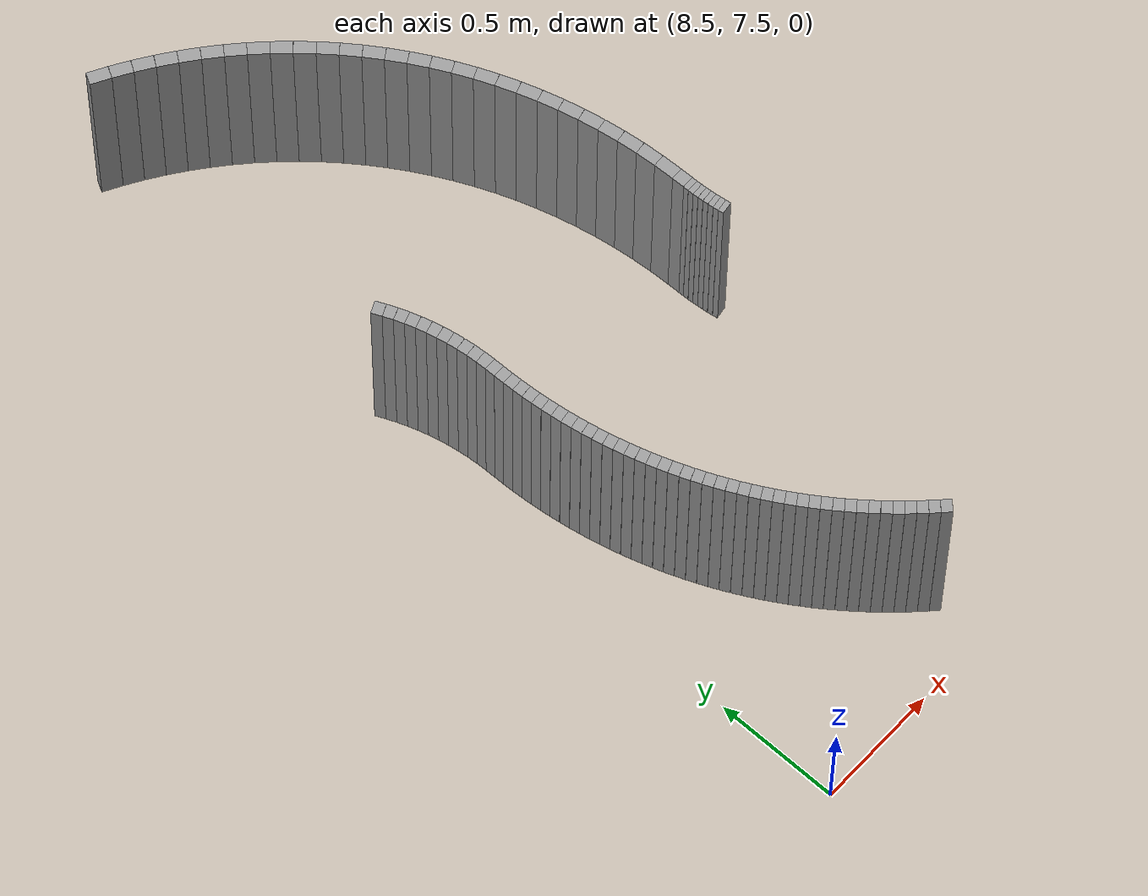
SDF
<sdf version="1.6">
 <model name="path_walls">
  <static>true</static>
  <model name="wall_left_175">
   <static>true</static>
   <pose>9.302464301004509 7.714959618961435 0.40 0 0 2.386019736903698</pose>
   <link name="wall_link">
    <visual name="wall_visual">
     <geometry><box><size>0.041257578265932716 0.05 0.8</size></box></geometry>
     <material><ambient>0.3 0.3 0.3 1</ambient><diffuse>0.6 0.6 0.6 1</diffuse></material>
    </visual>
    <collision name="wall_collision">
     <geometry><box><size>0.041257578265932716 0.05 0.8</size></box></geometry>
    </collision>
   </link>
  </model>
  <model name="wall_left_176">
   <static>true</static>
   <pose>9.27271799120377 7.743545919556013 0.40 0 0 2.366136239096101</pose>
   <link name="wall_link">
    <visual name="wall_visual">
     <geometry><box><size>0.041257578265904434 0.05 0.8</size></box></geometry>
     <material><ambient>0.3 0.3 0.3 1</ambient><diffuse>0.6 0.6 0.6 1</diffuse></material>
    </visual>
    <collision name="wall_collision">
     <geometry><box><size>0.041257578265904434 0.05 0.8</size></box></geometry>
    </collision>
   </link>
  </model>
  <model name="wall_left_177">
   <static>true</static>
   <pose>9.243545919556013 7.772717991203772 0.40 0 0 2.3462527412885428</pose>
   <link name="wall_link">
    <visual name="wall_visual">
     <geometry><box><size>0.04125757826590383 0.05 0.8</size></box></geometry>
     <material><ambient>0.3 0.3 0.3 1</ambient><diffuse>0.6 0.6 0.6 1</diffuse></material>
    </visual>
    <collision name="wall_collision">
     <geometry><box><size>0.04125757826590383 0.05 0.8</size></box></geometry>
    </collision>
   </link>
  </model>
  <model name="wall_left_178">
   <static>true</static>
   <pose>9.214959618961437 7.802464301004507 0.40 0 0 2.3263692434810497</pose>
   <link name="wall_link">
    <visual name="wall_visual">
     <geometry><box><size>0.04125757826592888 0.05 0.8</size></box></geometry>
     <material><ambient>0.3 0.3 0.3 1</ambient><diffuse>0.6 0.6 0.6 1</diffuse></material>
    </visual>
    <collision name="wall_collision">
     <geometry><box><size>0.04125757826592888 0.05 0.8</size></box></geometry>
    </collision>
   </link>
  </model>
  <model name="wall_left_179">
   <static>true</static>
   <pose>9.186970390741283 7.832773089038407 0.40 0 0 2.306485745673514</pose>
   <link name="wall_link">
    <visual name="wall_visual">
     <geometry><box><size>0.04125757826587797 0.05 0.8</size></box></geometry>
     <material><ambient>0.3 0.3 0.3 1</ambient><diffuse>0.6 0.6 0.6 1</diffuse></material>
    </visual>
    <collision name="wall_collision">
     <geometry><box><size>0.04125757826587797 0.05 0.8</size></box></geometry>
    </collision>
   </link>
  </model>
  <model name="wall_left_180">
   <static>true</static>
   <pose>9.159589300169902 7.8636323730152755 0.40 0 0 2.2866022478659986</pose>
   <link name="wall_link">
    <visual name="wall_visual">
     <geometry><box><size>0.04125757826591408 0.05 0.8</size></box></geometry>
     <material><ambient>0.3 0.3 0.3 1</ambient><diffuse>0.6 0.6 0.6 1</diffuse></material>
    </visual>
    <collision name="wall_collision">
     <geometry><box><size>0.04125757826591408 0.05 0.8</size></box></geometry>
    </collision>
   </link>
  </model>
  <model name="wall_left_181">
   <static>true</static>
   <pose>9.132827172100225 7.895029953011601 0.40 0 0 2.26671875005847</pose>
   <link name="wall_link">
    <visual name="wall_visual">
     <geometry><box><size>0.04125757826588423 0.05 0.8</size></box></geometry>
     <material><ambient>0.3 0.3 0.3 1</ambient><diffuse>0.6 0.6 0.6 1</diffuse></material>
    </visual>
    <collision name="wall_collision">
     <geometry><box><size>0.04125757826588423 0.05 0.8</size></box></geometry>
    </collision>
   </link>
  </model>
  <model name="wall_left_182">
   <static>true</static>
   <pose>9.106694586684267 7.926953416293676 0.40 0 0 2.246835252250909</pose>
   <link name="wall_link">
    <visual name="wall_visual">
     <geometry><box><size>0.0412575782659376 0.05 0.8</size></box></geometry>
     <material><ambient>0.3 0.3 0.3 1</ambient><diffuse>0.6 0.6 0.6 1</diffuse></material>
    </visual>
    <collision name="wall_collision">
     <geometry><box><size>0.0412575782659376 0.05 0.8</size></box></geometry>
    </collision>
   </link>
  </model>
  <model name="wall_left_183">
   <static>true</static>
   <pose>9.081201875190361 7.9593901422248505 0.40 0 0 2.2269517544433945</pose>
   <link name="wall_link">
    <visual name="wall_visual">
     <geometry><box><size>0.04125757826591474 0.05 0.8</size></box></geometry>
     <material><ambient>0.3 0.3 0.3 1</ambient><diffuse>0.6 0.6 0.6 1</diffuse></material>
    </visual>
    <collision name="wall_collision">
     <geometry><box><size>0.04125757826591474 0.05 0.8</size></box></geometry>
    </collision>
   </link>
  </model>
  <model name="wall_left_184">
   <static>true</static>
   <pose>9.056359115918818 7.992327307254941 0.40 0 0 2.2070682566358815</pose>
   <link name="wall_link">
    <visual name="wall_visual">
     <geometry><box><size>0.04125757826588048 0.05 0.8</size></box></geometry>
     <material><ambient>0.3 0.3 0.3 1</ambient><diffuse>0.6 0.6 0.6 1</diffuse></material>
    </visual>
    <collision name="wall_collision">
     <geometry><box><size>0.04125757826588048 0.05 0.8</size></box></geometry>
    </collision>
   </link>
  </model>
  <model name="wall_left_185">
   <static>true</static>
   <pose>9.0321761302175 8.025751889989996 0.40 0 0 2.1871847588283253</pose>
   <link name="wall_link">
    <visual name="wall_visual">
     <geometry><box><size>0.04125757826589817 0.05 0.8</size></box></geometry>
     <material><ambient>0.3 0.3 0.3 1</ambient><diffuse>0.6 0.6 0.6 1</diffuse></material>
    </visual>
    <collision name="wall_collision">
     <geometry><box><size>0.04125757826589817 0.05 0.8</size></box></geometry>
    </collision>
   </link>
  </model>
  <model name="wall_left_186">
   <static>true</static>
   <pose>9.008662478599081 8.059650676340127 0.40 0 0 2.16730126102083</pose>
   <link name="wall_link">
    <visual name="wall_visual">
     <geometry><box><size>0.04125757826592035 0.05 0.8</size></box></geometry>
     <material><ambient>0.3 0.3 0.3 1</ambient><diffuse>0.6 0.6 0.6 1</diffuse></material>
    </visual>
    <collision name="wall_collision">
     <geometry><box><size>0.04125757826592035 0.05 0.8</size></box></geometry>
    </collision>
   </link>
  </model>
  <model name="wall_left_187">
   <static>true</static>
   <pose>8.985827456961408 8.094010264743549 0.40 0 0 2.147417763213248</pose>
   <link name="wall_link">
    <visual name="wall_visual">
     <geometry><box><size>0.04125757826593085 0.05 0.8</size></box></geometry>
     <material><ambient>0.3 0.3 0.3 1</ambient><diffuse>0.6 0.6 0.6 1</diffuse></material>
    </visual>
    <collision name="wall_collision">
     <geometry><box><size>0.04125757826593085 0.05 0.8</size></box></geometry>
    </collision>
   </link>
  </model>
  <model name="wall_left_188">
   <static>true</static>
   <pose>8.963680092912455 8.128817071464749 0.40 0 0 2.1275342654057465</pose>
   <link name="wall_link">
    <visual name="wall_visual">
     <geometry><box><size>0.04125757826587831 0.05 0.8</size></box></geometry>
     <material><ambient>0.3 0.3 0.3 1</ambient><diffuse>0.6 0.6 0.6 1</diffuse></material>
    </visual>
    <collision name="wall_collision">
     <geometry><box><size>0.04125757826587831 0.05 0.8</size></box></geometry>
    </collision>
   </link>
  </model>
  <model name="wall_left_189">
   <static>true</static>
   <pose>8.942229142201306 8.164057335964753 0.40 0 0 2.1076507675981917</pose>
   <link name="wall_link">
    <visual name="wall_visual">
     <geometry><box><size>0.04125757826589164 0.05 0.8</size></box></geometry>
     <material><ambient>0.3 0.3 0.3 1</ambient><diffuse>0.6 0.6 0.6 1</diffuse></material>
    </visual>
    <collision name="wall_collision">
     <geometry><box><size>0.04125757826589164 0.05 0.8</size></box></geometry>
    </collision>
   </link>
  </model>
  <model name="wall_left_190">
   <static>true</static>
   <pose>8.92148308525666 8.199717126341223 0.40 0 0 2.087767269790727</pose>
   <link name="wall_link">
    <visual name="wall_visual">
     <geometry><box><size>0.04125757826593005 0.05 0.8</size></box></geometry>
     <material><ambient>0.3 0.3 0.3 1</ambient><diffuse>0.6 0.6 0.6 1</diffuse></material>
    </visual>
    <collision name="wall_collision">
     <geometry><box><size>0.04125757826593005 0.05 0.8</size></box></geometry>
    </collision>
   </link>
  </model>
  <model name="wall_left_191">
   <static>true</static>
   <pose>8.901450123834223 8.235782344836217 0.40 0 0 2.067883771983142</pose>
   <link name="wall_link">
    <visual name="wall_visual">
     <geometry><box><size>0.041257578265895066 0.05 0.8</size></box></geometry>
     <material><ambient>0.3 0.3 0.3 1</ambient><diffuse>0.6 0.6 0.6 1</diffuse></material>
    </visual>
    <collision name="wall_collision">
     <geometry><box><size>0.041257578265895066 0.05 0.8</size></box></geometry>
    </collision>
   </link>
  </model>
  <model name="wall_left_192">
   <static>true</static>
   <pose>8.882138177774186 8.27223873340965 0.40 0 0 2.048000274175587</pose>
   <link name="wall_link">
    <visual name="wall_visual">
     <geometry><box><size>0.04125757826589065 0.05 0.8</size></box></geometry>
     <material><ambient>0.3 0.3 0.3 1</ambient><diffuse>0.6 0.6 0.6 1</diffuse></material>
    </visual>
    <collision name="wall_collision">
     <geometry><box><size>0.04125757826589065 0.05 0.8</size></box></geometry>
    </collision>
   </link>
  </model>
  <model name="wall_left_193">
   <static>true</static>
   <pose>8.863554881870161 8.309071879376136 0.40 0 0 2.0281167763681145</pose>
   <link name="wall_link">
    <visual name="wall_visual">
     <geometry><box><size>0.041257578265946324 0.05 0.8</size></box></geometry>
     <material><ambient>0.3 0.3 0.3 1</ambient><diffuse>0.6 0.6 0.6 1</diffuse></material>
    </visual>
    <collision name="wall_collision">
     <geometry><box><size>0.041257578265946324 0.05 0.8</size></box></geometry>
    </collision>
   </link>
  </model>
  <model name="wall_left_194">
   <static>true</static>
   <pose>8.845707582850917 8.346267221102778 0.40 0 0 2.0082332785605757</pose>
   <link name="wall_link">
    <visual name="wall_visual">
     <geometry><box><size>0.04125757826586524 0.05 0.8</size></box></geometry>
     <material><ambient>0.3 0.3 0.3 1</ambient><diffuse>0.6 0.6 0.6 1</diffuse></material>
    </visual>
    <collision name="wall_collision">
     <geometry><box><size>0.04125757826586524 0.05 0.8</size></box></geometry>
    </collision>
   </link>
  </model>
  <model name="wall_left_195">
   <static>true</static>
   <pose>8.828603336475854 8.383810053766073 0.40 0 0 1.9883497807530655</pose>
   <link name="wall_link">
    <visual name="wall_visual">
     <geometry><box><size>0.04125757826592391 0.05 0.8</size></box></geometry>
     <material><ambient>0.3 0.3 0.3 1</ambient><diffuse>0.6 0.6 0.6 1</diffuse></material>
    </visual>
    <collision name="wall_collision">
     <geometry><box><size>0.04125757826592391 0.05 0.8</size></box></geometry>
    </collision>
   </link>
  </model>
  <model name="wall_left_196">
   <static>true</static>
   <pose>8.812248904745587 8.42168553516532 0.40 0 0 1.9684662829455257</pose>
   <link name="wall_link">
    <visual name="wall_visual">
     <geometry><box><size>0.04125757826590636 0.05 0.8</size></box></geometry>
     <material><ambient>0.3 0.3 0.3 1</ambient><diffuse>0.6 0.6 0.6 1</diffuse></material>
    </visual>
    <collision name="wall_collision">
     <geometry><box><size>0.04125757826590636 0.05 0.8</size></box></geometry>
    </collision>
   </link>
  </model>
  <model name="wall_left_197">
   <static>true</static>
   <pose>8.796650753228688 8.459878691590259 0.40 0 0 1.9485827851379438</pose>
   <link name="wall_link">
    <visual name="wall_visual">
     <geometry><box><size>0.04125757826590648 0.05 0.8</size></box></geometry>
     <material><ambient>0.3 0.3 0.3 1</ambient><diffuse>0.6 0.6 0.6 1</diffuse></material>
    </visual>
    <collision name="wall_collision">
     <geometry><box><size>0.04125757826590648 0.05 0.8</size></box></geometry>
    </collision>
   </link>
  </model>
  <model name="wall_left_198">
   <static>true</static>
   <pose>8.781815048505553 8.498374423740863 0.40 0 0 1.9286992873304398</pose>
   <link name="wall_link">
    <visual name="wall_visual">
     <geometry><box><size>0.04125757826588693 0.05 0.8</size></box></geometry>
     <material><ambient>0.3 0.3 0.3 1</ambient><diffuse>0.6 0.6 0.6 1</diffuse></material>
    </visual>
    <collision name="wall_collision">
     <geometry><box><size>0.04125757826588693 0.05 0.8</size></box></geometry>
    </collision>
   </link>
  </model>
  <model name="wall_left_199">
   <static>true</static>
   <pose>8.767747655730496 8.537157512696709 0.40 0 0 1.9088157895229234</pose>
   <link name="wall_link">
    <visual name="wall_visual">
     <geometry><box><size>0.041257578265943756 0.05 0.8</size></box></geometry>
     <material><ambient>0.3 0.3 0.3 1</ambient><diffuse>0.6 0.6 0.6 1</diffuse></material>
    </visual>
    <collision name="wall_collision">
     <geometry><box><size>0.041257578265943756 0.05 0.8</size></box></geometry>
    </collision>
   </link>
  </model>
  <model name="wall_left_200">
   <static>true</static>
   <pose>8.754454136313058 8.57621262593355 0.40 0 0 1.8889322917153877</pose>
   <link name="wall_link">
    <visual name="wall_visual">
     <geometry><box><size>0.04125757826587373 0.05 0.8</size></box></geometry>
     <material><ambient>0.3 0.3 0.3 1</ambient><diffuse>0.6 0.6 0.6 1</diffuse></material>
    </visual>
    <collision name="wall_collision">
     <geometry><box><size>0.04125757826587373 0.05 0.8</size></box></geometry>
    </collision>
   </link>
  </model>
  <model name="wall_left_201">
   <static>true</static>
   <pose>8.741939745719318 8.615524323384957 0.40 0 0 1.8690487939078486</pose>
   <link name="wall_link">
    <visual name="wall_visual">
     <geometry><box><size>0.04125757826593165 0.05 0.8</size></box></geometry>
     <material><ambient>0.3 0.3 0.3 1</ambient><diffuse>0.6 0.6 0.6 1</diffuse></material>
    </visual>
    <collision name="wall_collision">
     <geometry><box><size>0.04125757826593165 0.05 0.8</size></box></geometry>
    </collision>
   </link>
  </model>
  <model name="wall_left_202">
   <static>true</static>
   <pose>8.7302094313942 8.655077063546393 0.40 0 0 1.8491652961003382</pose>
   <link name="wall_link">
    <visual name="wall_visual">
     <geometry><box><size>0.04125757826588237 0.05 0.8</size></box></geometry>
     <material><ambient>0.3 0.3 0.3 1</ambient><diffuse>0.6 0.6 0.6 1</diffuse></material>
    </visual>
    <collision name="wall_collision">
     <geometry><box><size>0.04125757826588237 0.05 0.8</size></box></geometry>
    </collision>
   </link>
  </model>
  <model name="wall_left_203">
   <static>true</static>
   <pose>8.719267830805576 8.694855209619359 0.40 0 0 1.829281798292814</pose>
   <link name="wall_link">
    <visual name="wall_visual">
     <geometry><box><size>0.04125757826591402 0.05 0.8</size></box></geometry>
     <material><ambient>0.3 0.3 0.3 1</ambient><diffuse>0.6 0.6 0.6 1</diffuse></material>
    </visual>
    <collision name="wall_collision">
     <geometry><box><size>0.04125757826591402 0.05 0.8</size></box></geometry>
    </collision>
   </link>
  </model>
  <model name="wall_left_204">
   <static>true</static>
   <pose>8.709119269610845 8.734843035693311 0.40 0 0 1.80939830048526</pose>
   <link name="wall_link">
    <visual name="wall_visual">
     <geometry><box><size>0.04125757826589393 0.05 0.8</size></box></geometry>
     <material><ambient>0.3 0.3 0.3 1</ambient><diffuse>0.6 0.6 0.6 1</diffuse></material>
    </visual>
    <collision name="wall_collision">
     <geometry><box><size>0.04125757826589393 0.05 0.8</size></box></geometry>
    </collision>
   </link>
  </model>
  <model name="wall_left_205">
   <static>true</static>
   <pose>8.699767759946859 8.775024732962692 0.40 0 0 1.7895148026777246</pose>
   <link name="wall_link">
    <visual name="wall_visual">
     <geometry><box><size>0.04125757826591269 0.05 0.8</size></box></geometry>
     <material><ambient>0.3 0.3 0.3 1</ambient><diffuse>0.6 0.6 0.6 1</diffuse></material>
    </visual>
    <collision name="wall_collision">
     <geometry><box><size>0.04125757826591269 0.05 0.8</size></box></geometry>
    </collision>
   </link>
  </model>
  <model name="wall_left_206">
   <static>true</static>
   <pose>8.691216998843746 8.815384415976848 0.40 0 0 1.7696313048701529</pose>
   <link name="wall_link">
    <visual name="wall_visual">
     <geometry><box><size>0.04125757826593827 0.05 0.8</size></box></geometry>
     <material><ambient>0.3 0.3 0.3 1</ambient><diffuse>0.6 0.6 0.6 1</diffuse></material>
    </visual>
    <collision name="wall_collision">
     <geometry><box><size>0.04125757826593827 0.05 0.8</size></box></geometry>
    </collision>
   </link>
  </model>
  <model name="wall_left_207">
   <static>true</static>
   <pose>8.683470366763338 8.8559061289201 0.40 0 0 1.7497478070626775</pose>
   <link name="wall_link">
    <visual name="wall_visual">
     <geometry><box><size>0.041257578265890445 0.05 0.8</size></box></geometry>
     <material><ambient>0.3 0.3 0.3 1</ambient><diffuse>0.6 0.6 0.6 1</diffuse></material>
    </visual>
    <collision name="wall_collision">
     <geometry><box><size>0.041257578265890445 0.05 0.8</size></box></geometry>
    </collision>
   </link>
  </model>
  <model name="wall_left_208">
   <static>true</static>
   <pose>8.676530926262727 8.896573851919811 0.40 0 0 1.7298643092551482</pose>
   <link name="wall_link">
    <visual name="wall_visual">
     <geometry><box><size>0.041257578265889924 0.05 0.8</size></box></geometry>
     <material><ambient>0.3 0.3 0.3 1</ambient><diffuse>0.6 0.6 0.6 1</diffuse></material>
    </visual>
    <collision name="wall_collision">
     <geometry><box><size>0.041257578265889924 0.05 0.8</size></box></geometry>
    </collision>
   </link>
  </model>
  <model name="wall_left_209">
   <static>true</static>
   <pose>8.670401420783502 8.937371507379709 0.40 0 0 1.709980811447583</pose>
   <link name="wall_link">
    <visual name="wall_visual">
     <geometry><box><size>0.04125757826593075 0.05 0.8</size></box></geometry>
     <material><ambient>0.3 0.3 0.3 1</ambient><diffuse>0.6 0.6 0.6 1</diffuse></material>
    </visual>
    <collision name="wall_collision">
     <geometry><box><size>0.04125757826593075 0.05 0.8</size></box></geometry>
    </collision>
   </link>
  </model>
  <model name="wall_left_210">
   <static>true</static>
   <pose>8.665084273567189 8.978282966335891 0.40 0 0 1.6900973136400297</pose>
   <link name="wall_link">
    <visual name="wall_visual">
     <geometry><box><size>0.04125757826586906 0.05 0.8</size></box></geometry>
     <material><ambient>0.3 0.3 0.3 1</ambient><diffuse>0.6 0.6 0.6 1</diffuse></material>
    </visual>
    <collision name="wall_collision">
     <geometry><box><size>0.04125757826586906 0.05 0.8</size></box></geometry>
    </collision>
   </link>
  </model>
  <model name="wall_left_211">
   <static>true</static>
   <pose>8.660581586697203 9.019292054833377 0.40 0 0 1.6702138158325643</pose>
   <link name="wall_link">
    <visual name="wall_visual">
     <geometry><box><size>0.041257578265937254 0.05 0.8</size></box></geometry>
     <material><ambient>0.3 0.3 0.3 1</ambient><diffuse>0.6 0.6 0.6 1</diffuse></material>
    </visual>
    <collision name="wall_collision">
     <geometry><box><size>0.041257578265937254 0.05 0.8</size></box></geometry>
    </collision>
   </link>
  </model>
  <model name="wall_left_212">
   <static>true</static>
   <pose>8.656895140267846 9.060382560320257 0.40 0 0 1.6503303180250584</pose>
   <link name="wall_link">
    <visual name="wall_visual">
     <geometry><box><size>0.0412575782658688 0.05 0.8</size></box></geometry>
     <material><ambient>0.3 0.3 0.3 1</ambient><diffuse>0.6 0.6 0.6 1</diffuse></material>
    </visual>
    <collision name="wall_collision">
     <geometry><box><size>0.0412575782658688 0.05 0.8</size></box></geometry>
    </collision>
   </link>
  </model>
  <model name="wall_left_213">
   <static>true</static>
   <pose>8.654026391680546 9.101538238057191 0.40 0 0 1.6304468202175075</pose>
   <link name="wall_link">
    <visual name="wall_visual">
     <geometry><box><size>0.04125757826593714 0.05 0.8</size></box></geometry>
     <material><ambient>0.3 0.3 0.3 1</ambient><diffuse>0.6 0.6 0.6 1</diffuse></material>
    </visual>
    <collision name="wall_collision">
     <geometry><box><size>0.04125757826593714 0.05 0.8</size></box></geometry>
    </collision>
   </link>
  </model>
  <model name="wall_left_214">
   <static>true</static>
   <pose>8.651976475067684 9.142742817539638 0.40 0 0 1.6105633224099702</pose>
   <link name="wall_link">
    <visual name="wall_visual">
     <geometry><box><size>0.04125757826589805 0.05 0.8</size></box></geometry>
     <material><ambient>0.3 0.3 0.3 1</ambient><diffuse>0.6 0.6 0.6 1</diffuse></material>
    </visual>
    <collision name="wall_collision">
     <geometry><box><size>0.04125757826589805 0.05 0.8</size></box></geometry>
    </collision>
   </link>
  </model>
  <model name="wall_left_215">
   <static>true</static>
   <pose>8.650746200844244 9.183980008930156 0.40 0 0 1.5906798246024703</pose>
   <link name="wall_link">
    <visual name="wall_visual">
     <geometry><box><size>0.041257578265889217 0.05 0.8</size></box></geometry>
     <material><ambient>0.3 0.3 0.3 1</ambient><diffuse>0.6 0.6 0.6 1</diffuse></material>
    </visual>
    <collision name="wall_collision">
     <geometry><box><size>0.041257578265889217 0.05 0.8</size></box></geometry>
    </collision>
   </link>
  </model>
  <model name="wall_left_216">
   <static>true</static>
   <pose>8.64998396652452 9.225603469462236 0.40 0 0 1.5875618908661269</pose>
   <link name="wall_link">
    <visual name="wall_visual">
     <geometry><box><size>0.042003401299916525 0.05 0.8</size></box></geometry>
     <material><ambient>0.3 0.3 0.3 1</ambient><diffuse>0.6 0.6 0.6 1</diffuse></material>
    </visual>
    <collision name="wall_collision">
     <geometry><box><size>0.042003401299916525 0.05 0.8</size></box></geometry>
    </collision>
   </link>
  </model>
  <model name="wall_left_217">
   <static>true</static>
   <pose>8.648782332257287 9.267954033458512 0.40 0 0 1.6105633224099176</pose>
   <link name="wall_link">
    <visual name="wall_visual">
     <geometry><box><size>0.04273741812056066 0.05 0.8</size></box></geometry>
     <material><ambient>0.3 0.3 0.3 1</ambient><diffuse>0.6 0.6 0.6 1</diffuse></material>
    </visual>
    <collision name="wall_collision">
     <geometry><box><size>0.04273741812056066 0.05 0.8</size></box></geometry>
    </collision>
   </link>
  </model>
  <model name="wall_left_218">
   <static>true</static>
   <pose>8.646235039350124 9.310607007489043 0.40 0 0 1.650330318024958</pose>
   <link name="wall_link">
    <visual name="wall_visual">
     <geometry><box><size>0.04273741812054273 0.05 0.8</size></box></geometry>
     <material><ambient>0.3 0.3 0.3 1</ambient><diffuse>0.6 0.6 0.6 1</diffuse></material>
    </visual>
    <collision name="wall_collision">
     <geometry><box><size>0.04273741812054273 0.05 0.8</size></box></geometry>
    </collision>
   </link>
  </model>
  <model name="wall_left_219">
   <static>true</static>
   <pose>8.64199402673382 9.35312498847112 0.40 0 0 1.6900973136401558</pose>
   <link name="wall_link">
    <visual name="wall_visual">
     <geometry><box><size>0.042737418120552116 0.05 0.8</size></box></geometry>
     <material><ambient>0.3 0.3 0.3 1</ambient><diffuse>0.6 0.6 0.6 1</diffuse></material>
    </visual>
    <collision name="wall_collision">
     <geometry><box><size>0.042737418120552116 0.05 0.8</size></box></geometry>
    </collision>
   </link>
  </model>
  <model name="wall_left_220">
   <static>true</static>
   <pose>8.63606600032104 9.395440746737444 0.40 0 0 1.7298643092551687</pose>
   <link name="wall_link">
    <visual name="wall_visual">
     <geometry><box><size>0.0427374181205646 0.05 0.8</size></box></geometry>
     <material><ambient>0.3 0.3 0.3 1</ambient><diffuse>0.6 0.6 0.6 1</diffuse></material>
    </visual>
    <collision name="wall_collision">
     <geometry><box><size>0.0427374181205646 0.05 0.8</size></box></geometry>
    </collision>
   </link>
  </model>
  <model name="wall_left_221">
   <static>true</static>
   <pose>8.62846033354003 9.437487372376385 0.40 0 0 1.769631304870147</pose>
   <link name="wall_link">
    <visual name="wall_visual">
     <geometry><box><size>0.042737418120558854 0.05 0.8</size></box></geometry>
     <material><ambient>0.3 0.3 0.3 1</ambient><diffuse>0.6 0.6 0.6 1</diffuse></material>
    </visual>
    <collision name="wall_collision">
     <geometry><box><size>0.042737418120558854 0.05 0.8</size></box></geometry>
    </collision>
   </link>
  </model>
  <model name="wall_left_222">
   <static>true</static>
   <pose>8.619189052513276 9.479198381030308 0.40 0 0 1.8093983004852823</pose>
   <link name="wall_link">
    <visual name="wall_visual">
     <geometry><box><size>0.042737418120557896 0.05 0.8</size></box></geometry>
     <material><ambient>0.3 0.3 0.3 1</ambient><diffuse>0.6 0.6 0.6 1</diffuse></material>
    </visual>
    <collision name="wall_collision">
     <geometry><box><size>0.042737418120557896 0.05 0.8</size></box></geometry>
    </collision>
   </link>
  </model>
  <model name="wall_left_223">
   <static>true</static>
   <pose>8.608266817041752 9.52050781902102 0.40 0 0 1.8491652961003209</pose>
   <link name="wall_link">
    <visual name="wall_visual">
     <geometry><box><size>0.042737418120540265 0.05 0.8</size></box></geometry>
     <material><ambient>0.3 0.3 0.3 1</ambient><diffuse>0.6 0.6 0.6 1</diffuse></material>
    </visual>
    <collision name="wall_collision">
     <geometry><box><size>0.042737418120540265 0.05 0.8</size></box></geometry>
    </collision>
   </link>
  </model>
  <model name="wall_left_224">
   <static>true</static>
   <pose>8.595710897424752 9.56135036763611 0.40 0 0 1.8889322917153544</pose>
   <link name="wall_link">
    <visual name="wall_visual">
     <geometry><box><size>0.042737418120573335 0.05 0.8</size></box></geometry>
     <material><ambient>0.3 0.3 0.3 1</ambient><diffuse>0.6 0.6 0.6 1</diffuse></material>
    </visual>
    <collision name="wall_collision">
     <geometry><box><size>0.042737418120573335 0.05 0.8</size></box></geometry>
    </collision>
   </link>
  </model>
  <model name="wall_left_225">
   <static>true</static>
   <pose>8.581541147151999 9.601661446411214 0.40 0 0 1.92869928733046</pose>
   <link name="wall_link">
    <visual name="wall_visual">
     <geometry><box><size>0.04273741812054472 0.05 0.8</size></box></geometry>
     <material><ambient>0.3 0.3 0.3 1</ambient><diffuse>0.6 0.6 0.6 1</diffuse></material>
    </visual>
    <collision name="wall_collision">
     <geometry><box><size>0.04273741812054472 0.05 0.8</size></box></geometry>
    </collision>
   </link>
  </model>
  <model name="wall_left_226">
   <static>true</static>
   <pose>8.565779971511205 9.64137731524503 0.40 0 0 1.9684662829454604</pose>
   <link name="wall_link">
    <visual name="wall_visual">
     <geometry><box><size>0.04273741812057606 0.05 0.8</size></box></geometry>
     <material><ambient>0.3 0.3 0.3 1</ambient><diffuse>0.6 0.6 0.6 1</diffuse></material>
    </visual>
    <collision name="wall_collision">
     <geometry><box><size>0.04273741812057606 0.05 0.8</size></box></geometry>
    </collision>
   </link>
  </model>
  <model name="wall_left_227">
   <static>true</static>
   <pose>8.5484522921607 9.68043517518551 0.40 0 0 2.008233278560574</pose>
   <link name="wall_link">
    <visual name="wall_visual">
     <geometry><box><size>0.042737418120525165 0.05 0.8</size></box></geometry>
     <material><ambient>0.3 0.3 0.3 1</ambient><diffuse>0.6 0.6 0.6 1</diffuse></material>
    </visual>
    <collision name="wall_collision">
     <geometry><box><size>0.042737418120525165 0.05 0.8</size></box></geometry>
    </collision>
   </link>
  </model>
  <model name="wall_right_208">
   <static>true</static>
   <pose>9.663857473315652 9.054964048490124 0.40 0 0 1.729864309255128</pose>
   <link name="wall_link">
    <visual name="wall_visual">
     <geometry><box><size>0.021374407998860513 0.05 0.8</size></box></geometry>
     <material><ambient>0.3 0.3 0.3 1</ambient><diffuse>0.6 0.6 0.6 1</diffuse></material>
    </visual>
    <collision name="wall_collision">
     <geometry><box><size>0.021374407998860513 0.05 0.8</size></box></geometry>
    </collision>
   </link>
  </model>
  <model name="wall_right_209">
   <static>true</static>
   <pose>9.66068194638337 9.076100183228224 0.40 0 0 1.7099808114476236</pose>
   <link name="wall_link">
    <visual name="wall_visual">
     <geometry><box><size>0.02137440799882154 0.05 0.8</size></box></geometry>
     <material><ambient>0.3 0.3 0.3 1</ambient><diffuse>0.6 0.6 0.6 1</diffuse></material>
    </visual>
    <collision name="wall_collision">
     <geometry><box><size>0.02137440799882154 0.05 0.8</size></box></geometry>
    </collision>
   </link>
  </model>
  <model name="wall_right_210">
   <static>true</static>
   <pose>9.657927279755604 9.097295276404127 0.40 0 0 1.69009731364007</pose>
   <link name="wall_link">
    <visual name="wall_visual">
     <geometry><box><size>0.021374407998885903 0.05 0.8</size></box></geometry>
     <material><ambient>0.3 0.3 0.3 1</ambient><diffuse>0.6 0.6 0.6 1</diffuse></material>
    </visual>
    <collision name="wall_collision">
     <geometry><box><size>0.021374407998885903 0.05 0.8</size></box></geometry>
    </collision>
   </link>
  </model>
  <model name="wall_right_211">
   <static>true</static>
   <pose>9.655594562463527 9.118540948739932 0.40 0 0 1.6702138158325357</pose>
   <link name="wall_link">
    <visual name="wall_visual">
     <geometry><box><size>0.021374407998814873 0.05 0.8</size></box></geometry>
     <material><ambient>0.3 0.3 0.3 1</ambient><diffuse>0.6 0.6 0.6 1</diffuse></material>
    </visual>
    <collision name="wall_collision">
     <geometry><box><size>0.021374407998814873 0.05 0.8</size></box></geometry>
    </collision>
   </link>
  </model>
  <model name="wall_right_212">
   <static>true</static>
   <pose>9.653684716724664 9.13982880096177 0.40 0 0 1.6503303180250641</pose>
   <link name="wall_link">
    <visual name="wall_visual">
     <geometry><box><size>0.021374407998881673 0.05 0.8</size></box></geometry>
     <material><ambient>0.3 0.3 0.3 1</ambient><diffuse>0.6 0.6 0.6 1</diffuse></material>
    </visual>
    <collision name="wall_collision">
     <geometry><box><size>0.021374407998881673 0.05 0.8</size></box></geometry>
    </collision>
   </link>
  </model>
  <model name="wall_right_213">
   <static>true</static>
   <pose>9.652198497578308 9.161150417120353 0.40 0 0 1.6304468202174998</pose>
   <link name="wall_link">
    <visual name="wall_visual">
     <geometry><box><size>0.021374407998811257 0.05 0.8</size></box></geometry>
     <material><ambient>0.3 0.3 0.3 1</ambient><diffuse>0.6 0.6 0.6 1</diffuse></material>
    </visual>
    <collision name="wall_collision">
     <geometry><box><size>0.021374407998811257 0.05 0.8</size></box></geometry>
    </collision>
   </link>
  </model>
  <model name="wall_right_214">
   <static>true</static>
   <pose>9.651136492587021 9.182497367918135 0.40 0 0 1.6105633224098976</pose>
   <link name="wall_link">
    <visual name="wall_visual">
     <geometry><box><size>0.021374407998854546 0.05 0.8</size></box></geometry>
     <material><ambient>0.3 0.3 0.3 1</ambient><diffuse>0.6 0.6 0.6 1</diffuse></material>
    </visual>
    <collision name="wall_collision">
     <geometry><box><size>0.021374407998854546 0.05 0.8</size></box></geometry>
    </collision>
   </link>
  </model>
  <model name="wall_right_215">
   <static>true</static>
   <pose>9.65049912160434 9.203861214041812 0.40 0 0 1.5906798246025495</pose>
   <link name="wall_link">
    <visual name="wall_visual">
     <geometry><box><size>0.021374407998868267 0.05 0.8</size></box></geometry>
     <material><ambient>0.3 0.3 0.3 1</ambient><diffuse>0.6 0.6 0.6 1</diffuse></material>
    </visual>
    <collision name="wall_collision">
     <geometry><box><size>0.021374407998868267 0.05 0.8</size></box></geometry>
    </collision>
   </link>
  </model>
  <model name="wall_right_216">
   <static>true</static>
   <pose>9.649860422020257 9.240515355861547 0.40 0 0 1.5872072590160067</pose>
   <link name="wall_link">
    <visual name="wall_visual">
     <geometry><box><size>0.05194509546045694 0.05 0.8</size></box></geometry>
     <material><ambient>0.3 0.3 0.3 1</ambient><diffuse>0.6 0.6 0.6 1</diffuse></material>
    </visual>
    <collision name="wall_collision">
     <geometry><box><size>0.05194509546045694 0.05 0.8</size></box></geometry>
    </collision>
   </link>
  </model>
  <model name="wall_right_217">
   <static>true</static>
   <pose>9.647794215533285 9.307702689875942 0.40 0 0 1.6105633224099543</pose>
   <link name="wall_link">
    <visual name="wall_visual">
     <geometry><box><size>0.08250179345069615 0.05 0.8</size></box></geometry>
     <material><ambient>0.3 0.3 0.3 1</ambient><diffuse>0.6 0.6 0.6 1</diffuse></material>
    </visual>
    <collision name="wall_collision">
     <geometry><box><size>0.08250179345069615 0.05 0.8</size></box></geometry>
    </collision>
   </link>
  </model>
  <model name="wall_right_218">
   <static>true</static>
   <pose>9.642876833002301 9.39004146952798 0.40 0 0 1.6503303180249786</pose>
   <link name="wall_link">
    <visual name="wall_visual">
     <geometry><box><size>0.08250179345070839 0.05 0.8</size></box></geometry>
     <material><ambient>0.3 0.3 0.3 1</ambient><diffuse>0.6 0.6 0.6 1</diffuse></material>
    </visual>
    <collision name="wall_collision">
     <geometry><box><size>0.08250179345070839 0.05 0.8</size></box></geometry>
    </collision>
   </link>
  </model>
  <model name="wall_right_219">
   <static>true</static>
   <pose>9.634689835231281 9.472119653919695 0.40 0 0 1.6900973136401198</pose>
   <link name="wall_link">
    <visual name="wall_visual">
     <geometry><box><size>0.08250179345070079 0.05 0.8</size></box></geometry>
     <material><ambient>0.3 0.3 0.3 1</ambient><diffuse>0.6 0.6 0.6 1</diffuse></material>
    </visual>
    <collision name="wall_collision">
     <geometry><box><size>0.08250179345070079 0.05 0.8</size></box></geometry>
    </collision>
   </link>
  </model>
  <model name="wall_right_220">
   <static>true</static>
   <pose>9.623246167546501 9.55380746057076 0.40 0 0 1.7298643092551393</pose>
   <link name="wall_link">
    <visual name="wall_visual">
     <geometry><box><size>0.08250179345068392 0.05 0.8</size></box></geometry>
     <material><ambient>0.3 0.3 0.3 1</ambient><diffuse>0.6 0.6 0.6 1</diffuse></material>
    </visual>
    <collision name="wall_collision">
     <geometry><box><size>0.08250179345068392 0.05 0.8</size></box></geometry>
    </collision>
   </link>
  </model>
  <model name="wall_right_221">
   <static>true</static>
   <pose>9.608563924738768 9.634975724268314 0.40 0 0 1.769631304870168</pose>
   <link name="wall_link">
    <visual name="wall_visual">
     <geometry><box><size>0.08250179345069716 0.05 0.8</size></box></geometry>
     <material><ambient>0.3 0.3 0.3 1</ambient><diffuse>0.6 0.6 0.6 1</diffuse></material>
    </visual>
    <collision name="wall_collision">
     <geometry><box><size>0.08250179345069716 0.05 0.8</size></box></geometry>
    </collision>
   </link>
  </model>
  <model name="wall_right_222">
   <static>true</static>
   <pose>9.590666322451822 9.715496101303696 0.40 0 0 1.8093983004852834</pose>
   <link name="wall_link">
    <visual name="wall_visual">
     <geometry><box><size>0.08250179345069425 0.05 0.8</size></box></geometry>
     <material><ambient>0.3 0.3 0.3 1</ambient><diffuse>0.6 0.6 0.6 1</diffuse></material>
    </visual>
    <collision name="wall_collision">
     <geometry><box><size>0.08250179345069425 0.05 0.8</size></box></geometry>
    </collision>
   </link>
  </model>
  <model name="wall_right_223">
   <static>true</static>
   <pose>9.569581660473649 9.795241272410225 0.40 0 0 1.8491652961003169</pose>
   <link name="wall_link">
    <visual name="wall_visual">
     <geometry><box><size>0.08250179345071657 0.05 0.8</size></box></geometry>
     <material><ambient>0.3 0.3 0.3 1</ambient><diffuse>0.6 0.6 0.6 1</diffuse></material>
    </visual>
    <collision name="wall_collision">
     <geometry><box><size>0.08250179345071657 0.05 0.8</size></box></geometry>
    </collision>
   </link>
  </model>
  <model name="wall_right_224">
   <static>true</static>
   <pose>9.545343277988696 9.87408514408111 0.40 0 0 1.8889322917153857</pose>
   <link name="wall_link">
    <visual name="wall_visual">
     <geometry><box><size>0.08250179345067428 0.05 0.8</size></box></geometry>
     <material><ambient>0.3 0.3 0.3 1</ambient><diffuse>0.6 0.6 0.6 1</diffuse></material>
    </visual>
    <collision name="wall_collision">
     <geometry><box><size>0.08250179345067428 0.05 0.8</size></box></geometry>
    </collision>
   </link>
  </model>
  <model name="wall_right_225">
   <static>true</static>
   <pose>9.51798950086176 9.95190304794925 0.40 0 0 1.9286992873304436</pose>
   <link name="wall_link">
    <visual name="wall_visual">
     <geometry><box><size>0.08250179345070964 0.05 0.8</size></box></geometry>
     <material><ambient>0.3 0.3 0.3 1</ambient><diffuse>0.6 0.6 0.6 1</diffuse></material>
    </visual>
    <collision name="wall_collision">
     <geometry><box><size>0.08250179345070964 0.05 0.8</size></box></geometry>
    </collision>
   </link>
  </model>
  <model name="wall_right_226">
   <static>true</static>
   <pose>9.48756358103692 10.028571937913522 0.40 0 0 1.9684662829454722</pose>
   <link name="wall_link">
    <visual name="wall_visual">
     <geometry><box><size>0.08250179345067572 0.05 0.8</size></box></geometry>
     <material><ambient>0.3 0.3 0.3 1</ambient><diffuse>0.6 0.6 0.6 1</diffuse></material>
    </visual>
    <collision name="wall_collision">
     <geometry><box><size>0.08250179345067572 0.05 0.8</size></box></geometry>
    </collision>
   </link>
  </model>
  <model name="wall_right_227">
   <static>true</static>
   <pose>9.454113628147322 10.103970584699963 0.40 0 0 2.0082332785605788</pose>
   <link name="wall_link">
    <visual name="wall_visual">
     <geometry><box><size>0.08250179345072853 0.05 0.8</size></box></geometry>
     <material><ambient>0.3 0.3 0.3 1</ambient><diffuse>0.6 0.6 0.6 1</diffuse></material>
    </visual>
    <collision name="wall_collision">
     <geometry><box><size>0.08250179345072853 0.05 0.8</size></box></geometry>
    </collision>
   </link>
  </model>
  <model name="wall_right_228">
   <static>true</static>
   <pose>9.41769253344397 10.177979767550152 0.40 0 0 2.048000274175647</pose>
   <link name="wall_link">
    <visual name="wall_visual">
     <geometry><box><size>0.08250179345067753 0.05 0.8</size></box></geometry>
     <material><ambient>0.3 0.3 0.3 1</ambient><diffuse>0.6 0.6 0.6 1</diffuse></material>
    </visual>
    <collision name="wall_collision">
     <geometry><box><size>0.08250179345067753 0.05 0.8</size></box></geometry>
    </collision>
   </link>
  </model>
  <model name="wall_right_229">
   <static>true</static>
   <pose>9.37835788616379 10.250482462733737 0.40 0 0 2.087767269790674</pose>
   <link name="wall_link">
    <visual name="wall_visual">
     <geometry><box><size>0.08250179345069505 0.05 0.8</size></box></geometry>
     <material><ambient>0.3 0.3 0.3 1</ambient><diffuse>0.6 0.6 0.6 1</diffuse></material>
    </visual>
    <collision name="wall_collision">
     <geometry><box><size>0.08250179345069505 0.05 0.8</size></box></geometry>
    </collision>
   </link>
  </model>
  <model name="wall_right_230">
   <static>true</static>
   <pose>9.336171882469174 10.321364028587066 0.40 0 0 2.1275342654057336</pose>
   <link name="wall_link">
    <visual name="wall_visual">
     <geometry><box><size>0.08250179345069936 0.05 0.8</size></box></geometry>
     <material><ambient>0.3 0.3 0.3 1</ambient><diffuse>0.6 0.6 0.6 1</diffuse></material>
    </visual>
    <collision name="wall_collision">
     <geometry><box><size>0.08250179345069936 0.05 0.8</size></box></geometry>
    </collision>
   </link>
  </model>
  <model name="wall_right_231">
   <static>true</static>
   <pose>9.291201227103102 10.39051238678514 0.40 0 0 2.167301261020816</pose>
   <link name="wall_link">
    <visual name="wall_visual">
     <geometry><box><size>0.08250179345070696 0.05 0.8</size></box></geometry>
     <material><ambient>0.3 0.3 0.3 1</ambient><diffuse>0.6 0.6 0.6 1</diffuse></material>
    </visual>
    <collision name="wall_collision">
     <geometry><box><size>0.08250179345070696 0.05 0.8</size></box></geometry>
    </collision>
   </link>
  </model>
  <model name="wall_right_232">
   <static>true</static>
   <pose>9.243517027915228 10.457818199560508 0.40 0 0 2.207068256635851</pose>
   <link name="wall_link">
    <visual name="wall_visual">
     <geometry><box><size>0.08250179345068309 0.05 0.8</size></box></geometry>
     <material><ambient>0.3 0.3 0.3 1</ambient><diffuse>0.6 0.6 0.6 1</diffuse></material>
    </visual>
    <collision name="wall_collision">
     <geometry><box><size>0.08250179345068309 0.05 0.8</size></box></geometry>
    </collision>
   </link>
  </model>
  <model name="wall_right_233">
   <static>true</static>
   <pose>9.193194683425734 10.523175042588775 0.40 0 0 2.246835252250954</pose>
   <link name="wall_link">
    <visual name="wall_visual">
     <geometry><box><size>0.08250179345069965 0.05 0.8</size></box></geometry>
     <material><ambient>0.3 0.3 0.3 1</ambient><diffuse>0.6 0.6 0.6 1</diffuse></material>
    </visual>
    <collision name="wall_collision">
     <geometry><box><size>0.08250179345069965 0.05 0.8</size></box></geometry>
    </collision>
   </link>
  </model>
  <model name="wall_right_234">
   <static>true</static>
   <pose>9.140313763604775 10.586479573267328 0.40 0 0 2.2866022478659707</pose>
   <link name="wall_link">
    <visual name="wall_visual">
     <geometry><box><size>0.08250179345069698 0.05 0.8</size></box></geometry>
     <material><ambient>0.3 0.3 0.3 1</ambient><diffuse>0.6 0.6 0.6 1</diffuse></material>
    </visual>
    <collision name="wall_collision">
     <geometry><box><size>0.08250179345069698 0.05 0.8</size></box></geometry>
    </collision>
   </link>
  </model>
  <model name="wall_right_235">
   <static>true</static>
   <pose>9.084957884056026 10.647631694121198 0.40 0 0 2.326369243481042</pose>
   <link name="wall_link">
    <visual name="wall_visual">
     <geometry><box><size>0.08250179345069832 0.05 0.8</size></box></geometry>
     <material><ambient>0.3 0.3 0.3 1</ambient><diffuse>0.6 0.6 0.6 1</diffuse></material>
    </visual>
    <collision name="wall_collision">
     <geometry><box><size>0.08250179345069832 0.05 0.8</size></box></geometry>
    </collision>
   </link>
  </model>
  <model name="wall_right_236">
   <static>true</static>
   <pose>9.0272145738032 10.70653471107778 0.40 0 0 2.366136239096108</pose>
   <link name="wall_link">
    <visual name="wall_visual">
     <geometry><box><size>0.08250179345068724 0.05 0.8</size></box></geometry>
     <material><ambient>0.3 0.3 0.3 1</ambient><diffuse>0.6 0.6 0.6 1</diffuse></material>
    </visual>
    <collision name="wall_collision">
     <geometry><box><size>0.08250179345068724 0.05 0.8</size></box></geometry>
    </collision>
   </link>
  </model>
  <model name="wall_right_237">
   <static>true</static>
   <pose>8.967175136888674 10.763095486360022 0.40 0 0 2.4059032347111695</pose>
   <link name="wall_link">
    <visual name="wall_visual">
     <geometry><box><size>0.08250179345070276 0.05 0.8</size></box></geometry>
     <material><ambient>0.3 0.3 0.3 1</ambient><diffuse>0.6 0.6 0.6 1</diffuse></material>
    </visual>
    <collision name="wall_collision">
     <geometry><box><size>0.08250179345070276 0.05 0.8</size></box></geometry>
    </collision>
   </link>
  </model>
  <model name="wall_right_238">
   <static>true</static>
   <pose>8.90493450800303 10.817224585756406 0.40 0 0 2.445670230326266</pose>
   <link name="wall_link">
    <visual name="wall_visual">
     <geometry><box><size>0.08250179345071651 0.05 0.8</size></box></geometry>
     <material><ambient>0.3 0.3 0.3 1</ambient><diffuse>0.6 0.6 0.6 1</diffuse></material>
    </visual>
    <collision name="wall_collision">
     <geometry><box><size>0.08250179345071651 0.05 0.8</size></box></geometry>
    </collision>
   </link>
  </model>
  <model name="wall_right_239">
   <static>true</static>
   <pose>8.840591102373837 10.868836420034782 0.40 0 0 2.485437225941267</pose>
   <link name="wall_link">
    <visual name="wall_visual">
     <geometry><box><size>0.08250179345066783 0.05 0.8</size></box></geometry>
     <material><ambient>0.3 0.3 0.3 1</ambient><diffuse>0.6 0.6 0.6 1</diffuse></material>
    </visual>
    <collision name="wall_collision">
     <geometry><box><size>0.08250179345066783 0.05 0.8</size></box></geometry>
    </collision>
   </link>
  </model>
  <model name="wall_right_240">
   <static>true</static>
   <pose>8.774246660150872 10.917849380276586 0.40 0 0 2.5252042215563453</pose>
   <link name="wall_link">
    <visual name="wall_visual">
     <geometry><box><size>0.08250179345071426 0.05 0.8</size></box></geometry>
     <material><ambient>0.3 0.3 0.3 1</ambient><diffuse>0.6 0.6 0.6 1</diffuse></material>
    </visual>
    <collision name="wall_collision">
     <geometry><box><size>0.08250179345071426 0.05 0.8</size></box></geometry>
    </collision>
   </link>
  </model>
  <model name="wall_right_241">
   <static>true</static>
   <pose>8.706006085534074 10.964185966917295 0.40 0 0 2.5649712171714523</pose>
   <link name="wall_link">
    <visual name="wall_visual">
     <geometry><box><size>0.08250179345069013 0.05 0.8</size></box></geometry>
     <material><ambient>0.3 0.3 0.3 1</ambient><diffuse>0.6 0.6 0.6 1</diffuse></material>
    </visual>
    <collision name="wall_collision">
     <geometry><box><size>0.08250179345069013 0.05 0.8</size></box></geometry>
    </collision>
   </link>
  </model>
  <model name="wall_right_242">
   <static>true</static>
   <pose>8.635977280898462 11.00777291228915 0.40 0 0 2.604738212786446</pose>
   <link name="wall_link">
    <visual name="wall_visual">
     <geometry><box><size>0.08250179345069947 0.05 0.8</size></box></geometry>
     <material><ambient>0.3 0.3 0.3 1</ambient><diffuse>0.6 0.6 0.6 1</diffuse></material>
    </visual>
    <collision name="wall_collision">
     <geometry><box><size>0.08250179345069947 0.05 0.8</size></box></geometry>
    </collision>
   </link>
  </model>
  <model name="wall_right_243">
   <static>true</static>
   <pose>8.564270976178257 11.048541296472427 0.40 0 0 2.644505208401558</pose>
   <link name="wall_link">
    <visual name="wall_visual">
     <geometry><box><size>0.08250179345069544 0.05 0.8</size></box></geometry>
     <material><ambient>0.3 0.3 0.3 1</ambient><diffuse>0.6 0.6 0.6 1</diffuse></material>
    </visual>
    <collision name="wall_collision">
     <geometry><box><size>0.08250179345069544 0.05 0.8</size></box></geometry>
    </collision>
   </link>
  </model>
 </model>
</sdf>
